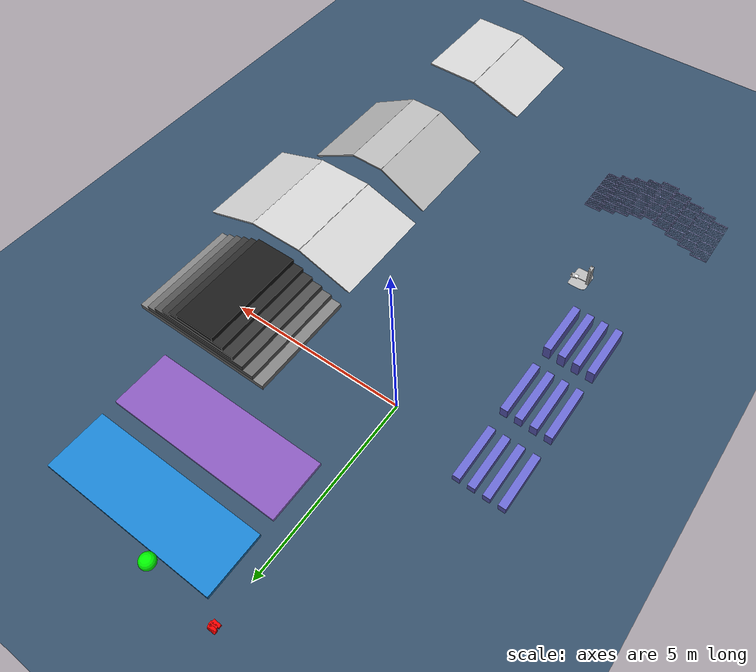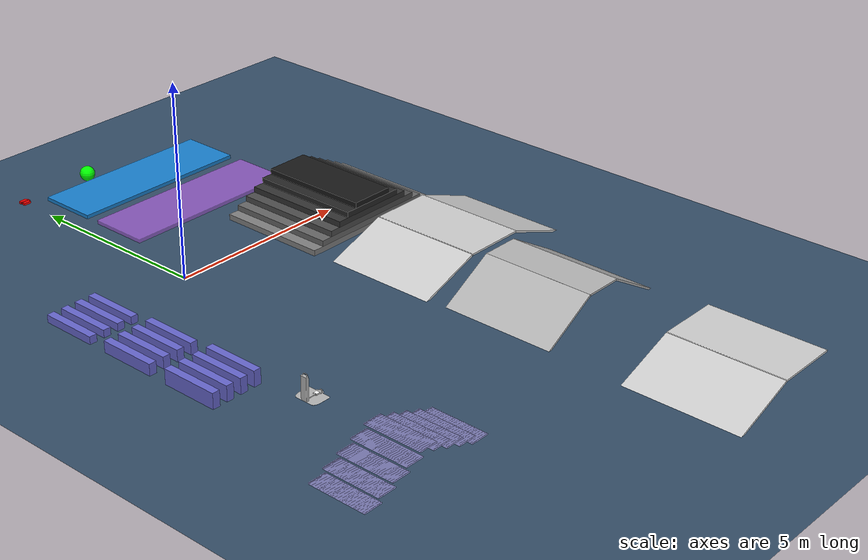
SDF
<?xml version="1.0" ?>
<sdf version="1.6">
  <world name="empty">
    <physics name="dart_physics" type="dartsim">
      <max_step_size>0.001</max_step_size>
      <real_time_factor>1.0</real_time_factor>
    </physics>

    <plugin
      filename="ignition-gazebo-physics-system"
      name="ignition::gazebo::systems::Physics">
    </plugin>
    <plugin
      filename="ignition-gazebo-user-commands-system"
      name="ignition::gazebo::systems::UserCommands">
    </plugin>
    <plugin
      filename="ignition-gazebo-scene-broadcaster-system"
      name="ignition::gazebo::systems::SceneBroadcaster">
    </plugin>
    <plugin
      filename="ignition-gazebo-contact-system"
      name="ignition::gazebo::systems::Contact">
    </plugin>
    <plugin
      filename="ignition-gazebo-imu-system"
      name="ignition::gazebo::systems::Imu">
    </plugin>
    <plugin
      filename="ignition-gazebo-sensors-system"
      name="ignition::gazebo::systems::Sensors">
      <render_engine>ogre2</render_engine>
    </plugin>

    <scene>
      <ambient>0.4 0.4 0.4 1</ambient>
      <background>0.7 0.8 0.9 1</background>
      <shadows>true</shadows>
    </scene>

    <light type="directional" name="sun">
      <cast_shadows>true</cast_shadows>
      <pose>0 0 10 0 0 0</pose>
      <diffuse>0.8 0.8 0.8 1</diffuse>
      <specular>0.2 0.2 0.2 1</specular>
      <attenuation>
        <range>1000</range>
        <constant>0.9</constant>
        <linear>0.01</linear>
        <quadratic>0.001</quadratic>
      </attenuation>
      <direction>-0.5 0.1 -0.9</direction>
    </light>

    <!-- Ground Plane                                                 -->
    <model name="ground_plane">
      <static>true</static>
      <link name="link">
        <collision name="collision">
          <geometry>
            <plane>
              <normal>0 0 1</normal>
              <size>100 100</size>
            </plane>
          </geometry>
          <surface>
            <friction>
              <ode>
                <mu>1.0</mu>
                <mu2>1.0</mu2>
              </ode>
            </friction>
          </surface>
        </collision>
        <visual name="visual">
          <geometry>
            <plane>
              <normal>0 0 1</normal>
              <size>100 100</size>
            </plane>
          </geometry>
          <material>
            <ambient>0.2 0.3 0.4 1</ambient>
            <diffuse>0.2 0.3 0.4 1</diffuse>
            <specular>0.1 0.1 0.1 1</specular>
          </material>
        </visual>
      </link>
    </model>

    <!-- Stairs (6-step pyramid at x=5, step height 0.15m)            -->
    <!-- SDF: bottom at z=0, stacking upward                         -->
    <model name="stairs">
      <static>true</static>
      <pose>5 0 0 0 0 0</pose>
      <link name="stair1">
        <pose>0 0 0.075 0 0 0</pose>
        <collision name="collision"><geometry><box><size>4.2 3.0 0.15</size></box></geometry></collision>
        <visual name="visual"><geometry><box><size>4.2 3.0 0.15</size></box></geometry>
          <material><ambient>0.5 0.5 0.5 1</ambient><diffuse>0.5 0.5 0.5 1</diffuse></material></visual>
      </link>
      <link name="stair2">
        <pose>0 0 0.225 0 0 0</pose>
        <collision name="collision"><geometry><box><size>3.6 3.0 0.15</size></box></geometry></collision>
        <visual name="visual"><geometry><box><size>3.6 3.0 0.15</size></box></geometry>
          <material><ambient>0.4 0.4 0.4 1</ambient><diffuse>0.4 0.4 0.4 1</diffuse></material></visual>
      </link>
      <link name="stair3">
        <pose>0 0 0.375 0 0 0</pose>
        <collision name="collision"><geometry><box><size>3.0 3.0 0.15</size></box></geometry></collision>
        <visual name="visual"><geometry><box><size>3.0 3.0 0.15</size></box></geometry>
          <material><ambient>0.3 0.3 0.3 1</ambient><diffuse>0.3 0.3 0.3 1</diffuse></material></visual>
      </link>
      <link name="stair4">
        <pose>0 0 0.525 0 0 0</pose>
        <collision name="collision"><geometry><box><size>2.4 3.0 0.15</size></box></geometry></collision>
        <visual name="visual"><geometry><box><size>2.4 3.0 0.15</size></box></geometry>
          <material><ambient>0.2 0.2 0.2 1</ambient><diffuse>0.2 0.2 0.2 1</diffuse></material></visual>
      </link>
      <link name="stair5">
        <pose>0 0 0.675 0 0 0</pose>
        <collision name="collision"><geometry><box><size>1.8 3.0 0.15</size></box></geometry></collision>
        <visual name="visual"><geometry><box><size>1.8 3.0 0.15</size></box></geometry>
          <material><ambient>0.15 0.15 0.15 1</ambient><diffuse>0.15 0.15 0.15 1</diffuse></material></visual>
      </link>
      <link name="stair6">
        <pose>0 0 0.825 0 0 0</pose>
        <collision name="collision"><geometry><box><size>1.2 3.0 0.15</size></box></geometry></collision>
        <visual name="visual"><geometry><box><size>1.2 3.0 0.15</size></box></geometry>
          <material><ambient>0.1 0.1 0.1 1</ambient><diffuse>0.1 0.1 0.1 1</diffuse></material></visual>
      </link>
    </model>

    <!-- Obstacles — 3 rows of 4 bars (height: 0.1 / 0.15 / 0.2m)    -->
    <model name="obstacles">
      <static>true</static>
      <link name="obs1"> <pose>-2.2 0 0.1 0 0 0</pose>
        <collision name="c"><geometry><box><size>0.2 1.5 0.2</size></box></geometry></collision>
        <visual name="v"><geometry><box><size>0.2 1.5 0.2</size></box></geometry>
          <material><ambient>0.4 0.4 0.8 1</ambient><diffuse>0.4 0.4 0.8 1</diffuse></material></visual></link>
      <link name="obs2"> <pose>-2.6 0 0.1 0 0 0</pose>
        <collision name="c"><geometry><box><size>0.2 1.5 0.2</size></box></geometry></collision>
        <visual name="v"><geometry><box><size>0.2 1.5 0.2</size></box></geometry>
          <material><ambient>0.4 0.4 0.8 1</ambient><diffuse>0.4 0.4 0.8 1</diffuse></material></visual></link>
      <link name="obs3"> <pose>-3.0 0 0.1 0 0 0</pose>
        <collision name="c"><geometry><box><size>0.2 1.5 0.2</size></box></geometry></collision>
        <visual name="v"><geometry><box><size>0.2 1.5 0.2</size></box></geometry>
          <material><ambient>0.4 0.4 0.8 1</ambient><diffuse>0.4 0.4 0.8 1</diffuse></material></visual></link>
      <link name="obs4"> <pose>-3.4 0 0.1 0 0 0</pose>
        <collision name="c"><geometry><box><size>0.2 1.5 0.2</size></box></geometry></collision>
        <visual name="v"><geometry><box><size>0.2 1.5 0.2</size></box></geometry>
          <material><ambient>0.4 0.4 0.8 1</ambient><diffuse>0.4 0.4 0.8 1</diffuse></material></visual></link>
      <link name="obs5"> <pose>-2.2 -2 0.15 0 0 0</pose>
        <collision name="c"><geometry><box><size>0.2 1.5 0.3</size></box></geometry></collision>
        <visual name="v"><geometry><box><size>0.2 1.5 0.3</size></box></geometry>
          <material><ambient>0.4 0.4 0.8 1</ambient><diffuse>0.4 0.4 0.8 1</diffuse></material></visual></link>
      <link name="obs6"> <pose>-2.6 -2 0.15 0 0 0</pose>
        <collision name="c"><geometry><box><size>0.2 1.5 0.3</size></box></geometry></collision>
        <visual name="v"><geometry><box><size>0.2 1.5 0.3</size></box></geometry>
          <material><ambient>0.4 0.4 0.8 1</ambient><diffuse>0.4 0.4 0.8 1</diffuse></material></visual></link>
      <link name="obs7"> <pose>-3.0 -2 0.15 0 0 0</pose>
        <collision name="c"><geometry><box><size>0.2 1.5 0.3</size></box></geometry></collision>
        <visual name="v"><geometry><box><size>0.2 1.5 0.3</size></box></geometry>
          <material><ambient>0.4 0.4 0.8 1</ambient><diffuse>0.4 0.4 0.8 1</diffuse></material></visual></link>
      <link name="obs8"> <pose>-3.4 -2 0.15 0 0 0</pose>
        <collision name="c"><geometry><box><size>0.2 1.5 0.3</size></box></geometry></collision>
        <visual name="v"><geometry><box><size>0.2 1.5 0.3</size></box></geometry>
          <material><ambient>0.4 0.4 0.8 1</ambient><diffuse>0.4 0.4 0.8 1</diffuse></material></visual></link>
      <link name="obs9"> <pose>-2.2 -4 0.2 0 0 0</pose>
        <collision name="c"><geometry><box><size>0.2 1.5 0.4</size></box></geometry></collision>
        <visual name="v"><geometry><box><size>0.2 1.5 0.4</size></box></geometry>
          <material><ambient>0.4 0.4 0.8 1</ambient><diffuse>0.4 0.4 0.8 1</diffuse></material></visual></link>
      <link name="obs10"><pose>-2.6 -4 0.2 0 0 0</pose>
        <collision name="c"><geometry><box><size>0.2 1.5 0.4</size></box></geometry></collision>
        <visual name="v"><geometry><box><size>0.2 1.5 0.4</size></box></geometry>
          <material><ambient>0.4 0.4 0.8 1</ambient><diffuse>0.4 0.4 0.8 1</diffuse></material></visual></link>
      <link name="obs11"><pose>-3.0 -4 0.2 0 0 0</pose>
        <collision name="c"><geometry><box><size>0.2 1.5 0.4</size></box></geometry></collision>
        <visual name="v"><geometry><box><size>0.2 1.5 0.4</size></box></geometry>
          <material><ambient>0.4 0.4 0.8 1</ambient><diffuse>0.4 0.4 0.8 1</diffuse></material></visual></link>
      <link name="obs12"><pose>-3.4 -4 0.2 0 0 0</pose>
        <collision name="c"><geometry><box><size>0.2 1.5 0.4</size></box></geometry></collision>
        <visual name="v"><geometry><box><size>0.2 1.5 0.4</size></box></geometry>
          <material><ambient>0.4 0.4 0.8 1</ambient><diffuse>0.4 0.4 0.8 1</diffuse></material></visual></link>
    </model>

    <!-- 20° Slope Set 1 (y=-3.5): up — flat — down                  -->
    <model name="slope20_set1">
      <static>true</static>
      <link name="up">
        <pose>3.3 -3.5 0.05 0 -0.3491 0</pose>
        <collision name="c"><geometry><box><size>3.0 3.0 0.05</size></box></geometry></collision>
        <visual name="v"><geometry><box><size>3.0 3.0 0.05</size></box></geometry>
          <material><ambient>0.8 0.8 0.8 1</ambient><diffuse>0.8 0.8 0.8 1</diffuse></material></visual>
      </link>
      <link name="flat">
        <pose>5.52 -3.5 0.56 0 0 0</pose>
        <collision name="c"><geometry><box><size>1.68 3.0 0.05</size></box></geometry></collision>
        <visual name="v"><geometry><box><size>1.68 3.0 0.05</size></box></geometry>
          <material><ambient>0.8 0.8 0.8 1</ambient><diffuse>0.8 0.8 0.8 1</diffuse></material></visual>
      </link>
      <link name="down">
        <pose>7.747 -3.5 0.05 0 0.3491 0</pose>
        <collision name="c"><geometry><box><size>3.0 3.0 0.05</size></box></geometry></collision>
        <visual name="v"><geometry><box><size>3.0 3.0 0.05</size></box></geometry>
          <material><ambient>0.8 0.8 0.8 1</ambient><diffuse>0.8 0.8 0.8 1</diffuse></material></visual>
      </link>
    </model>

    <!-- 20° Slope Set 2 (y=-12): up — flat (half, no down)           -->
    <model name="slope20_set2">
      <static>true</static>
      <link name="up">
        <pose>3.3 -12 0.05 0 -0.3491 0</pose>
        <collision name="c"><geometry><box><size>3.0 3.0 0.05</size></box></geometry></collision>
        <visual name="v"><geometry><box><size>3.0 3.0 0.05</size></box></geometry>
          <material><ambient>0.8 0.8 0.8 1</ambient><diffuse>0.8 0.8 0.8 1</diffuse></material></visual>
      </link>
      <link name="flat">
        <pose>5.52 -12 0.56 0 0 0</pose>
        <collision name="c"><geometry><box><size>1.68 3.0 0.05</size></box></geometry></collision>
        <visual name="v"><geometry><box><size>1.68 3.0 0.05</size></box></geometry>
          <material><ambient>0.8 0.8 0.8 1</ambient><diffuse>0.8 0.8 0.8 1</diffuse></material></visual>
      </link>
    </model>

    <!-- 30° Slope (y=-7): up — flat — down                           -->
    <model name="slope30">
      <static>true</static>
      <link name="up">
        <pose>3.3 -7 0.05 0 -0.5236 0</pose>
        <collision name="c"><geometry><box><size>3.0 3.0 0.05</size></box></geometry></collision>
        <visual name="v"><geometry><box><size>3.0 3.0 0.05</size></box></geometry>
          <material><ambient>0.7 0.7 0.7 1</ambient><diffuse>0.7 0.7 0.7 1</diffuse></material></visual>
      </link>
      <link name="flat">
        <pose>5.1 -7 0.795 0 0 0</pose>
        <collision name="c"><geometry><box><size>1.02 3.0 0.05</size></box></geometry></collision>
        <visual name="v"><geometry><box><size>1.02 3.0 0.05</size></box></geometry>
          <material><ambient>0.7 0.7 0.7 1</ambient><diffuse>0.7 0.7 0.7 1</diffuse></material></visual>
      </link>
      <link name="down">
        <pose>6.898 -7 0.05 0 0.5236 0</pose>
        <collision name="c"><geometry><box><size>3.0 3.0 0.05</size></box></geometry></collision>
        <visual name="v"><geometry><box><size>3.0 3.0 0.05</size></box></geometry>
          <material><ambient>0.7 0.7 0.7 1</ambient><diffuse>0.7 0.7 0.7 1</diffuse></material></visual>
      </link>
    </model>

    <!-- Slippery Terrain (low friction)                              -->
    <model name="slippery_terrain">
      <static>true</static>
      <link name="slip1">
        <pose>3 3 0.05 0 0 0</pose>
        <collision name="c">
          <geometry><box><size>5.0 1.6 0.1</size></box></geometry>
          <surface><friction><ode><mu>0.2</mu><mu2>0.3</mu2></ode></friction></surface>
        </collision>
        <visual name="v"><geometry><box><size>5.0 1.6 0.1</size></box></geometry>
          <material><ambient>0.7 0.4 0.9 0.7</ambient><diffuse>0.7 0.4 0.9 0.7</diffuse></material></visual>
      </link>
      <link name="slip2">
        <pose>3 5 0.05 0 0 0</pose>
        <collision name="c">
          <geometry><box><size>5.0 1.6 0.1</size></box></geometry>
          <surface><friction><ode><mu>0.1</mu><mu2>0.1</mu2></ode></friction></surface>
        </collision>
        <visual name="v"><geometry><box><size>5.0 1.6 0.1</size></box></geometry>
          <material><ambient>0.1 0.5 0.8 1</ambient><diffuse>0.1 0.5 0.8 1</diffuse></material></visual>
      </link>
    </model>

    <!-- Docking Station (OBJ mesh + ArUco markers)                   -->
    <model name="docking_station">
      <static>true</static>
      <pose>-1.5 -6 0.005 3.14159 0 0</pose>
      <link name="body">
        <visual name="mesh_visual">
          <geometry>
            <mesh>
              <uri>model://env/Docking_station.obj</uri>
            </mesh>
          </geometry>
          <material>
            <ambient>0.6 0.6 0.6 1</ambient>
            <diffuse>0.7 0.7 0.7 1</diffuse>
            <specular>0.2 0.2 0.2 1</specular>
          </material>
        </visual>
        <collision name="mesh_collision">
          <geometry>
            <mesh>
              <uri>model://env/Docking_station.obj</uri>
            </mesh>
          </geometry>
        </collision>
      </link>
      <link name="bottom_aruco">
        <pose>-0.1 -0.08 -0.035 0 3.14159 0</pose>
        <visual name="v">
          <geometry><box><size>0.1 0.1 0.002</size></box></geometry>
          <material>
            <diffuse>1 1 1 1</diffuse>
            <pbr>
              <metal>
                <albedo_map>model://env/bottom_id.png</albedo_map>
                <metalness>0.0</metalness>
                <roughness>0.5</roughness>
              </metal>
            </pbr>
          </material>
        </visual>
      </link>
      <link name="rear_aruco">
        <pose>-0.4 -0.08 -0.50 0 1.5708 0</pose>
        <visual name="v">
          <geometry><box><size>0.1 0.1 0.002</size></box></geometry>
          <material>
            <diffuse>1 1 1 1</diffuse>
            <pbr>
              <metal>
                <albedo_map>model://env/rear_id.png</albedo_map>
                <metalness>0.0</metalness>
                <roughness>0.5</roughness>
              </metal>
            </pbr>
          </material>
        </visual>
      </link>
    </model>

    <!-- Movable Objects                                              -->
    <model name="ball">
      <pose>2 6 0.2 0 0 0</pose>
      <link name="link">
        <inertial><mass>0.5</mass></inertial>
        <collision name="c"><geometry><sphere><radius>0.2</radius></sphere></geometry></collision>
        <visual name="v"><geometry><sphere><radius>0.2</radius></sphere></geometry>
          <material><ambient>0 1 0 1</ambient><diffuse>0 1 0 1</diffuse></material></visual>
      </link>
    </model>

    <model name="brick_1"><pose>0.007 6.170 0.03 0 0 0</pose>
      <link name="link"><inertial><mass>1.0</mass></inertial>
        <collision name="c"><geometry><box><size>0.2 0.08 0.06</size></box></geometry></collision>
        <visual name="v"><geometry><box><size>0.2 0.08 0.06</size></box></geometry>
          <material><ambient>1 0 0 1</ambient><diffuse>1 0 0 1</diffuse></material></visual></link></model>

    <model name="brick_2"><pose>0.023 6.162 0.03 0 0 0</pose>
      <link name="link"><inertial><mass>1.0</mass></inertial>
        <collision name="c"><geometry><box><size>0.2 0.08 0.06</size></box></geometry></collision>
        <visual name="v"><geometry><box><size>0.2 0.08 0.06</size></box></geometry>
          <material><ambient>1 0 0 1</ambient><diffuse>1 0 0 1</diffuse></material></visual></link></model>

    <model name="brick_3"><pose>0.011 6.050 0.03 0 0 0</pose>
      <link name="link"><inertial><mass>1.0</mass></inertial>
        <collision name="c"><geometry><box><size>0.2 0.08 0.06</size></box></geometry></collision>
        <visual name="v"><geometry><box><size>0.2 0.08 0.06</size></box></geometry>
          <material><ambient>1 0 0 1</ambient><diffuse>1 0 0 1</diffuse></material></visual></link></model>

    <model name="brick_4"><pose>0.039 6.109 0.03 0 0 0</pose>
      <link name="link"><inertial><mass>1.0</mass></inertial>
        <collision name="c"><geometry><box><size>0.2 0.08 0.06</size></box></geometry></collision>
        <visual name="v"><geometry><box><size>0.2 0.08 0.06</size></box></geometry>
          <material><ambient>1 0 0 1</ambient><diffuse>1 0 0 1</diffuse></material></visual></link></model>

    <model name="brick_5"><pose>0.001 6.183 0.03 0 0 0</pose>
      <link name="link"><inertial><mass>1.0</mass></inertial>
        <collision name="c"><geometry><box><size>0.2 0.08 0.06</size></box></geometry></collision>
        <visual name="v"><geometry><box><size>0.2 0.08 0.06</size></box></geometry>
          <material><ambient>1 0 0 1</ambient><diffuse>1 0 0 1</diffuse></material></visual></link></model>

    <!-- Grating Stairs                                                -->
    <model name="grating_stair">
      <static>true</static>
      <pose>-4 -9 0 0 0 0</pose>
      <link name="g1">
        <collision name="c"><pose>0 0 0.15 0 0 0</pose><geometry><box><size>0.5 1.5 0.06</size></box></geometry></collision>
        <visual name="v"><pose>-0.25 0.75 0.15 0 0 0</pose>
          <geometry><mesh><uri>model://env/Grating.stl</uri><scale>0.01 0.03 0.01</scale></mesh></geometry>
          <material><ambient>0.7 0.7 1 1</ambient><diffuse>0.7 0.7 1 1</diffuse></material></visual>
      </link>
      <link name="g2">
        <collision name="c"><pose>0.4 0 0.3 0 0 0</pose><geometry><box><size>0.5 1.5 0.06</size></box></geometry></collision>
        <visual name="v"><pose>0.15 0.75 0.3 0 0 0</pose>
          <geometry><mesh><uri>model://env/Grating.stl</uri><scale>0.01 0.03 0.01</scale></mesh></geometry>
          <material><ambient>0.7 0.7 1 1</ambient><diffuse>0.7 0.7 1 1</diffuse></material></visual>
      </link>
      <link name="g3">
        <collision name="c"><pose>0.8 0 0.45 0 0 0</pose><geometry><box><size>0.5 1.5 0.06</size></box></geometry></collision>
        <visual name="v"><pose>0.55 0.75 0.45 0 0 0</pose>
          <geometry><mesh><uri>model://env/Grating.stl</uri><scale>0.01 0.03 0.01</scale></mesh></geometry>
          <material><ambient>0.7 0.7 1 1</ambient><diffuse>0.7 0.7 1 1</diffuse></material></visual>
      </link>
      <link name="g4">
        <collision name="c"><pose>1.2 0 0.6 0 0 0</pose><geometry><box><size>0.5 1.5 0.06</size></box></geometry></collision>
        <visual name="v"><pose>0.95 0.75 0.6 0 0 0</pose>
          <geometry><mesh><uri>model://env/Grating.stl</uri><scale>0.01 0.03 0.01</scale></mesh></geometry>
          <material><ambient>0.7 0.7 1 1</ambient><diffuse>0.7 0.7 1 1</diffuse></material></visual>
      </link>
      <link name="g5">
        <collision name="c"><pose>1.6 0 0.75 0 0 0</pose><geometry><box><size>0.5 1.5 0.06</size></box></geometry></collision>
        <visual name="v"><pose>1.35 0.75 0.75 0 0 0</pose>
          <geometry><mesh><uri>model://env/Grating.stl</uri><scale>0.01 0.03 0.01</scale></mesh></geometry>
          <material><ambient>0.7 0.7 1 1</ambient><diffuse>0.7 0.7 1 1</diffuse></material></visual>
      </link>
      <link name="g6">
        <collision name="c"><pose>2.0 0 0.6 0 0 0</pose><geometry><box><size>0.5 1.5 0.06</size></box></geometry></collision>
        <visual name="v"><pose>1.75 0.75 0.6 0 0 0</pose>
          <geometry><mesh><uri>model://env/Grating.stl</uri><scale>0.01 0.03 0.01</scale></mesh></geometry>
          <material><ambient>0.7 0.7 1 1</ambient><diffuse>0.7 0.7 1 1</diffuse></material></visual>
      </link>
      <link name="g7">
        <collision name="c"><pose>2.4 0 0.45 0 0 0</pose><geometry><box><size>0.5 1.5 0.06</size></box></geometry></collision>
        <visual name="v"><pose>2.15 0.75 0.45 0 0 0</pose>
          <geometry><mesh><uri>model://env/Grating.stl</uri><scale>0.01 0.03 0.01</scale></mesh></geometry>
          <material><ambient>0.7 0.7 1 1</ambient><diffuse>0.7 0.7 1 1</diffuse></material></visual>
      </link>
      <link name="g8">
        <collision name="c"><pose>2.8 0 0.3 0 0 0</pose><geometry><box><size>0.5 1.5 0.06</size></box></geometry></collision>
        <visual name="v"><pose>2.55 0.75 0.3 0 0 0</pose>
          <geometry><mesh><uri>model://env/Grating.stl</uri><scale>0.01 0.03 0.01</scale></mesh></geometry>
          <material><ambient>0.7 0.7 1 1</ambient><diffuse>0.7 0.7 1 1</diffuse></material></visual>
      </link>
      <link name="g9">
        <collision name="c"><pose>3.2 0 0.15 0 0 0</pose><geometry><box><size>0.5 1.5 0.06</size></box></geometry></collision>
        <visual name="v"><pose>2.95 0.75 0.15 0 0 0</pose>
          <geometry><mesh><uri>model://env/Grating.stl</uri><scale>0.01 0.03 0.01</scale></mesh></geometry>
          <material><ambient>0.7 0.7 1 1</ambient><diffuse>0.7 0.7 1 1</diffuse></material></visual>
      </link>
    </model>

  </world>
</sdf>
